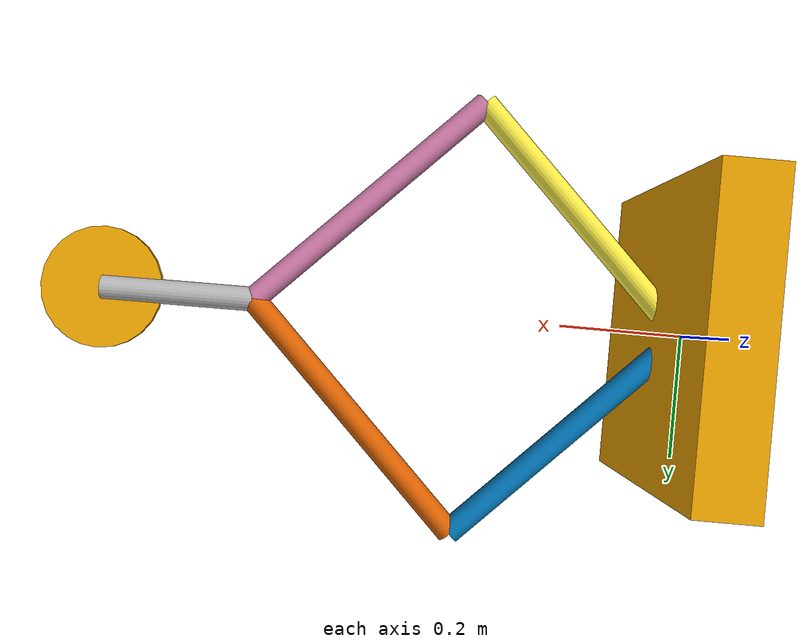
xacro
<?xml version="1.0"?>
<robot name="artist" xmlns:xacro="http://www.ros.org/wiki/xacro">
  <!-- MACROS -->
  <xacro:macro name="m_joint" params="name type axis_xyz origin_rpy origin_xyz parent child limit_e limit_l limit_u limit_v">
      <joint name="${name}" type="${type}">
        <axis xyz="${axis_xyz}" />
        <limit effort="${limit_e}" lower="${limit_l}" upper="${limit_u}" velocity="${limit_v}" />
        <origin rpy="${origin_rpy}" xyz="${origin_xyz}" />
        <parent link="${parent}" />
        <child link="${child}" />
      </joint>
      <transmission name="trans_${name}">
        <type>transmission_interface/SimpleTransmission</type>
        <joint name="${name}">
          <hardwareInterface>hardware_interface/EffortJointInterface</hardwareInterface>
        </joint>
        <actuator name="motor_${name}">
          <hardwareInterface>hardware_interface/EffortJointInterface</hardwareInterface>
          <mechanicalReduction>1</mechanicalReduction>
        </actuator>
      </transmission>
    </xacro:macro>

    <xacro:macro name="m_link_cylinder" params="name origin_xyz origin_rpy radius length mass ixx ixy ixz iyy iyz izz">
      <link name="${name}">
        <inertial>
          <mass value="${mass}" />
          <origin rpy="${origin_rpy}" xyz="${origin_xyz}" />
          <inertia ixx="${ixx}" ixy="${ixy}" ixz="${ixz}" iyy="${iyy}" iyz="${iyz}" izz="${izz}" />
        </inertial>
        <collision>
          <origin rpy="${origin_rpy}" xyz="${origin_xyz}" />
          <geometry>
            <cylinder radius="${radius}" length="${length}" />
          </geometry>
        </collision>
        <visual>
          <origin rpy="${origin_rpy}" xyz="${origin_xyz}" />
          <geometry>
            <cylinder radius="${radius}" length="${length}" />
          </geometry>
        </visual>
      </link>
    </xacro:macro>

    <xacro:macro name="m_link_box" params="name origin_xyz origin_rpy size mass ixx ixy ixz iyy iyz izz">
      <link name="${name}">
        <inertial>
          <mass value="${mass}" />
          <origin rpy="${origin_rpy}" xyz="${origin_xyz}" />
          <inertia ixx="${ixx}" ixy="${ixy}" ixz="${ixz}" iyy="${iyy}" iyz="${iyz}" izz="${izz}" />
        </inertial>
        <collision>
          <origin rpy="${origin_rpy}" xyz="${origin_xyz}" />
          <geometry>
            <box size="${size}" />
          </geometry>
        </collision>
        <visual>
          <origin rpy="${origin_rpy}" xyz="${origin_xyz}" />
          <geometry>
            <box size="${size}" />
          </geometry>
        </visual>
      </link>
    </xacro:macro>

  <!--END OF MACROS-->

  <m_link_box name= "base_link"
    origin_xyz= "0 0 0" origin_rpy="0 0 0"
    mass="1024"
      ixx="170.667" ixy="0" ixz="0"
      iyy="170.667" iyz="0"
      izz="170.667"
    size= "0.1 0.5 0.5" />

  <m_joint  name= "base_link__link_00" type= "revolute"
    axis_xyz = "0 0 1"
    origin_rpy= "0 0 0" origin_xyz= "0 0 0"
    parent = "base_link" child = "link_00"
    limit_e="1000" limit_l="-0.78" limit_u="0.78" limit_v="0.5"/>

  <m_link_cylinder name = "link_00"
    origin_xyz= "0 0 0" origin_rpy= " 0 0 0"
    radius= "0.05" length= "0.1"
    mass="157.633"
              ixx="13.235" ixy="0" ixz="0"
              iyy="13.235" iyz="0"
              izz="9.655" />

  <m_joint name= "link_00__link_01" type="revolute"
    axis_xyz = "0 1 0"
    origin_rpy= "0 0 0" origin_xyz= "0 0 0"
    parent = "link_00" child = "link_01"
    limit_e="1000" limit_l="-1.57079" limit_u="1.57079" limit_v="0.5"/>

  <m_link_cylinder name= "link_01"
    origin_xyz= "0 0 0" origin_rpy= " 1.57079 0 0"
    radius= "0.05" length= "0.1"
    mass="157.633"
              ixx="13.235" ixy="0" ixz="0"
              iyy="13.235" iyz="0"
              izz="9.655" />

  <m_joint name= "link_01__link_02" type="revolute"
    axis_xyz = "0 0 1"
    origin_rpy= "0 0 -0.7853" origin_xyz= "0 0 0"
    parent = "link_01" child = "link_02"

    limit_e="1000" limit_l="-0.74" limit_u="0.74" limit_v="0.5"   />

  <m_link_cylinder name= "link_02"
    origin_xyz= "0.25 0 0" origin_rpy= "0 -1.57079 0"
    radius = "0.02" length= "0.5"
    mass="157.633"
              ixx="13.235" ixy="0" ixz="0"
              iyy="13.235" iyz="0"
              izz="9.655" />

  <joint name="link_01__link_03" type="revolute">
    <parent link="link_01"/>
    <child link="link_03"/>
    <origin xyz="0 0 0" rpy="0 0 -0.7853" />
    <axis xyz="0 0 1" />
    <limit lower="-1.57" upper="1.57" effort="0.5293" velocity="0.5" />
    <mimic joint="link_01__link_02" multiplier="-1" offset="0" />
  </joint>

  <m_link_cylinder name= "link_03"
    origin_xyz= "0 0.25 0" origin_rpy= "1.57079 0 0"
    radius = "0.02" length= "0.5"
    mass="57.906"
              ixx="12.679" ixy="0" ixz="0"
              iyy="12.679" iyz="0"
              izz="0.651" />

  <joint name="link_03__link_04" type="revolute">
    <parent link="link_03"/>
    <child link="link_04"/>
    <origin xyz="0 0.5 0" rpy="0 0 0" />
    <axis xyz="0 0 1" />
    <limit lower="-1.57" upper="1.57" effort="0.5293" velocity="0.5" />
    <mimic joint="link_01__link_02" multiplier="2" offset="0" />
  </joint>

  <m_link_cylinder name= "link_04"
    origin_xyz= "0.25 0 0" origin_rpy= "0 -1.57079 0"
    radius = "0.02" length= "0.5"
    mass="57.906"
              ixx="12.679" ixy="0" ixz="0"
              iyy="12.679" iyz="0"
              izz="0.651"/>

  <joint name="link_02__link_05" type="revolute">
    <parent link="link_02"/>
    <child link="link_05"/>
    <origin xyz="0.5 0 0" rpy="0 0 0" />
    <axis xyz="0 0 1" />
    <limit lower="-1.57" upper="1.57" effort="0.5293" velocity="0.5" />
    <mimic joint="link_01__link_02" multiplier="-2" offset="0" />
  </joint>

  <m_link_cylinder name= "link_05"
    origin_xyz= "0 0.25 0" origin_rpy= "1.57 0 0"
    radius = "0.02" length= "0.5"
    mass="57.906"
              ixx="12.679" ixy="0" ixz="0"
              iyy="12.679" iyz="0"
              izz="0.651"/>

  <joint name="link_05__link_06" type="revolute">
    <parent link="link_05"/>
    <child link="link_06"/>
    <origin xyz="0 0.5 0" rpy="0 0 -0.78" />
    <axis xyz="0 0 1" />
    <limit lower="-1.57" upper="1.57" effort="0.5293" velocity="0.5" />
    <mimic joint="link_01__link_02" multiplier="1" offset="0" />
  </joint>
  <m_link_cylinder name= "link_06"
    origin_xyz= "0 0.125 0" origin_rpy= "1.57 0 0"
    radius = "0.02" length= "0.25"
    mass="57.906"
              ixx="12.679" ixy="0" ixz="0"
              iyy="12.679" iyz="0"
              izz="0.651"/>

  <m_joint name = "link_06__link_07" type= "revolute"
    axis_xyz = "0 1 0"
    origin_rpy= "0 0 0" origin_xyz= "0 0 0"
    parent = "link_06" child = "link_07"
    limit_e="1000" limit_l="-3.14" limit_u="3.14" limit_v="0.5"   />

  <m_link_cylinder name = "link_07"
    origin_xyz= "0 0.25 0" origin_rpy= "0 0 0"
    radius = "0.1" length= "0.01"
    mass="57.906"
              ixx="12.679" ixy="0" ixz="0"
              iyy="12.679" iyz="0"
              izz="0.651"/>

  <gazebo>
      <plugin name="gazebo_ros_control" filename="libgazebo_ros_control.so">
      </plugin>
    </gazebo>
</robot>
